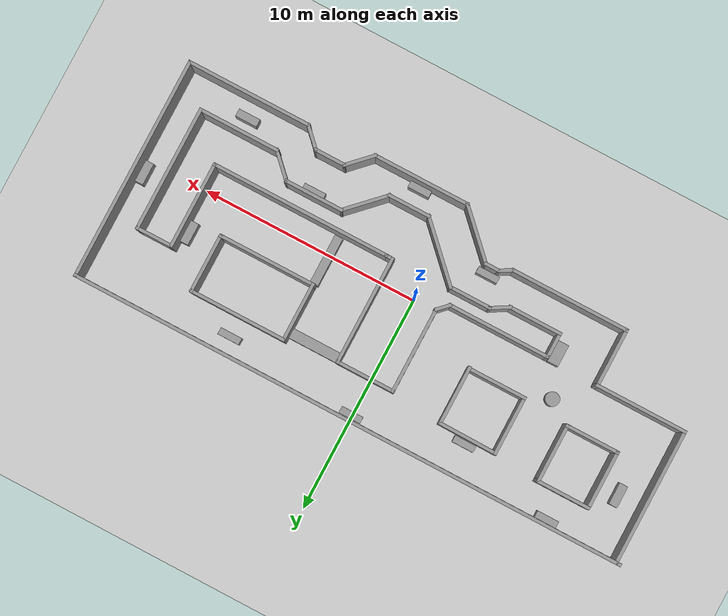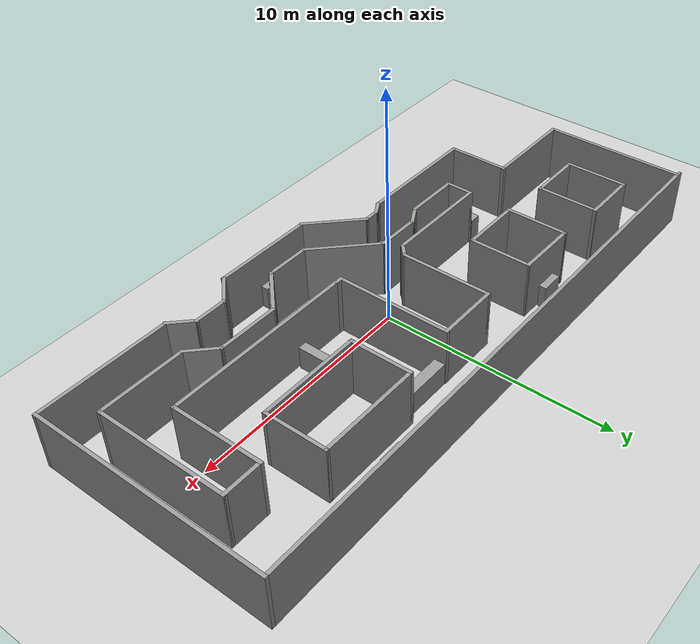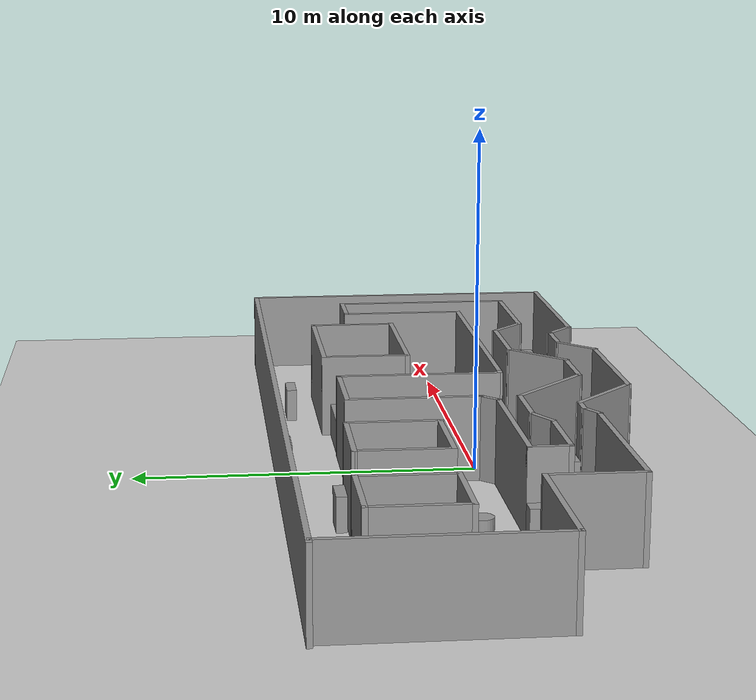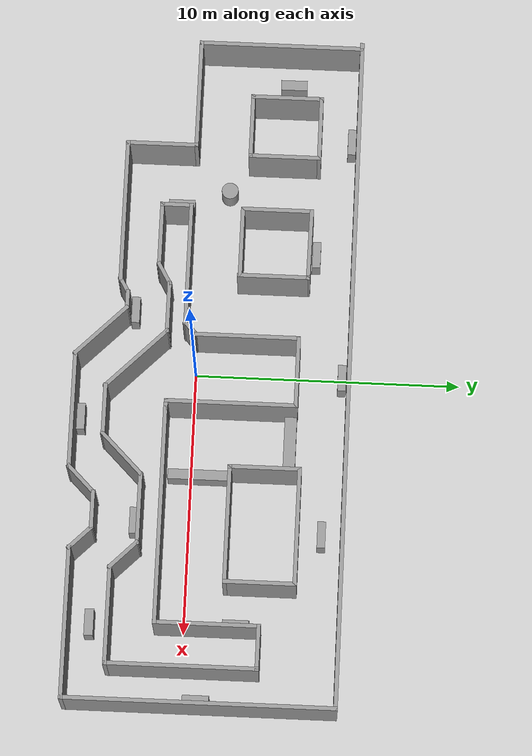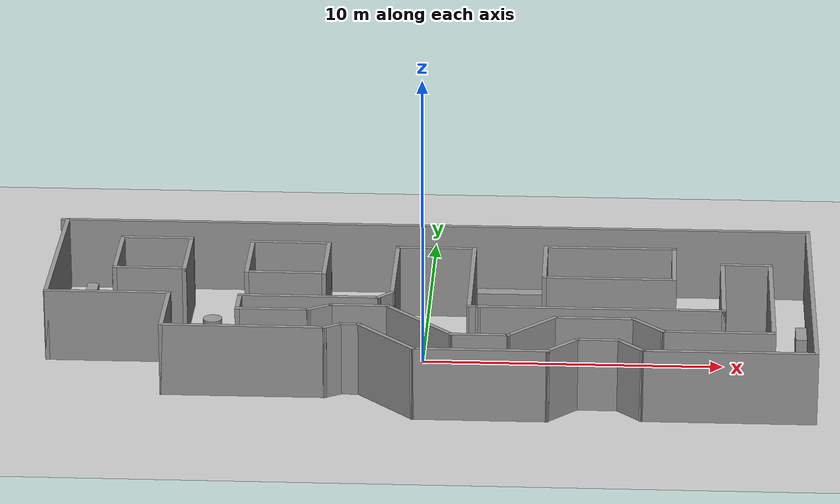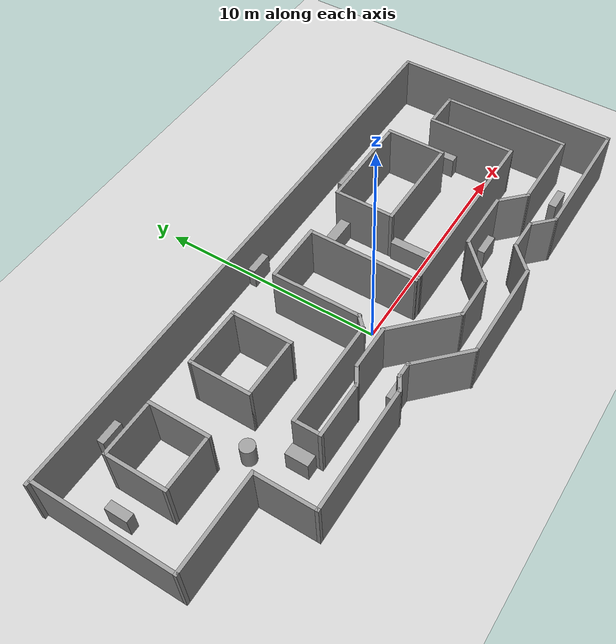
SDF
<sdf version="1.7">
 <world name="default">
  <light name="sun" type="directional">
   <pose>0 0 10 0 -0 0</pose>
   <diffuse>0.8 0.8 0.8 1</diffuse>
   <specular>0.2 0.2 0.2 1</specular>
   <attenuation>
    <range>1000</range>
    <constant>0.9</constant>
    <linear>0.01</linear>
    <quadratic>0.001</quadratic>
   </attenuation>
   <direction>-0.5 0.1 -0.9</direction>
   <spot><inner_angle>0</inner_angle><outer_angle>0</outer_angle><falloff>0</falloff></spot>
  </light>
  <model name="ground_plane">
   <static>1</static>
   <link name="link">
    <collision name="collision">
     <geometry><plane><normal>0 0 1</normal><size>100 100</size></plane></geometry>
     <surface>
      <contact><collide_bitmask>65535</collide_bitmask></contact>
      <friction><ode><mu>100</mu><mu2>50</mu2></ode></friction>
     </surface>
    </collision>
    <visual name="visual">
     <cast_shadows>0</cast_shadows>
     <geometry><plane><normal>0 0 1</normal><size>100 100</size></plane></geometry>
     <material>
      <script><uri>file://media/materials/scripts/gazebo.material</uri><name>Gazebo/Grey</name></script>
     </material>
    </visual>
   </link>
  </model>
  <gravity>0 0 -9.8</gravity>
  <magnetic_field>6e-06 2.3e-05 -4.2e-05</magnetic_field>
  <atmosphere type="adiabatic"/>
  <physics type="ode">
   <max_step_size>0.001</max_step_size>
   <real_time_factor>1</real_time_factor>
   <real_time_update_rate>1000</real_time_update_rate>
  </physics>
  <scene><ambient>0.4 0.4 0.4 1</ambient><background>0.7 0.7 0.7 1</background><shadows>1</shadows></scene>
  <audio><device>default</device></audio>
  <spherical_coordinates>
   <surface_model>EARTH_WGS84</surface_model>
   <latitude_deg>0</latitude_deg>
   <longitude_deg>0</longitude_deg>
   <elevation>0</elevation>
   <heading_deg>0</heading_deg>
  </spherical_coordinates>
  <model name="Wall_mid_term">
   <pose>0.110845 0.641806 0 0 -0 0</pose>
   <link name="Wall_29">
    <collision name="Wall_29_Collision">
     <geometry><box><size>4.5 0.15 2.5</size></box></geometry>
     <pose>0 0 1.25 0 -0 0</pose>
    </collision>
    <visual name="Wall_29_Visual">
     <pose>0 0 1.25 0 -0 0</pose>
     <geometry><box><size>4.5 0.15 2.5</size></box></geometry>
     <material>
      <script><uri>file://media/materials/scripts/gazebo.material</uri><name>Gazebo/Grey</name></script>
      <ambient>1 1 1 1</ambient>
     </material>
     <meta><layer>0</layer></meta>
    </visual>
    <pose>6.05948 3.45999 0 0 -0 0</pose>
   </link>
   <link name="Wall_30">
    <collision name="Wall_30_Collision">
     <geometry><box><size>2.75 0.15 2.5</size></box></geometry>
     <pose>0 0 1.25 0 -0 0</pose>
    </collision>
    <visual name="Wall_30_Visual">
     <pose>0 0 1.25 0 -0 0</pose>
     <geometry><box><size>2.75 0.15 2.5</size></box></geometry>
     <material>
      <script><uri>file://media/materials/scripts/gazebo.material</uri><name>Gazebo/Grey</name></script>
      <ambient>1 1 1 1</ambient>
     </material>
     <meta><layer>0</layer></meta>
    </visual>
    <pose>8.23448 2.15999 0 0 -0 -1.5708</pose>
   </link>
   <link name="Wall_31">
    <collision name="Wall_31_Collision">
     <geometry><box><size>4.5 0.15 2.5</size></box></geometry>
     <pose>0 0 1.25 0 -0 0</pose>
    </collision>
    <visual name="Wall_31_Visual">
     <pose>0 0 1.25 0 -0 0</pose>
     <geometry><box><size>4.5 0.15 2.5</size></box></geometry>
     <material>
      <script><uri>file://media/materials/scripts/gazebo.material</uri><name>Gazebo/Grey</name></script>
      <ambient>1 1 1 1</ambient>
     </material>
     <meta><layer>0</layer></meta>
    </visual>
    <pose>6.05948 0.859987 0 0 -0 3.14159</pose>
   </link>
   <link name="Wall_32">
    <collision name="Wall_32_Collision">
     <geometry><box><size>2.75 0.15 2.5</size></box></geometry>
     <pose>0 0 1.25 0 -0 0</pose>
    </collision>
    <visual name="Wall_32_Visual">
     <pose>0 0 1.25 0 -0 0</pose>
     <geometry><box><size>2.75 0.15 2.5</size></box></geometry>
     <material>
      <script><uri>file://media/materials/scripts/gazebo.material</uri><name>Gazebo/Grey</name></script>
      <ambient>1 1 1 1</ambient>
     </material>
     <meta><layer>0</layer></meta>
    </visual>
    <pose>3.88448 2.15999 0 0 -0 1.5708</pose>
   </link>
   <link name="Wall_35">
    <collision name="Wall_35_Collision">
     <geometry><box><size>8.25 0.15 2.5</size></box></geometry>
     <pose>0 0 1.25 0 -0 0</pose>
    </collision>
    <visual name="Wall_35_Visual">
     <pose>0 0 1.25 0 -0 0</pose>
     <geometry><box><size>8.25 0.15 2.5</size></box></geometry>
     <material>
      <script><uri>file://media/materials/scripts/gazebo.material</uri><name>Gazebo/Grey</name></script>
      <ambient>1 1 1 1</ambient>
     </material>
     <meta><layer>0</layer></meta>
    </visual>
    <pose>5.8081 -1.64781 0 0 -0 0</pose>
   </link>
   <link name="Wall_36">
    <collision name="Wall_36_Collision">
     <geometry><box><size>4 0.15 2.5</size></box></geometry>
     <pose>0 0 1.25 0 -0 0</pose>
    </collision>
    <visual name="Wall_36_Visual">
     <pose>0 0 1.25 0 -0 0</pose>
     <geometry><box><size>4 0.15 2.5</size></box></geometry>
     <material>
      <script><uri>file://media/materials/scripts/gazebo.material</uri><name>Gazebo/Grey</name></script>
      <ambient>1 1 1 1</ambient>
     </material>
     <meta><layer>0</layer></meta>
    </visual>
    <pose>9.8581 0.27719 0 0 -0 1.5708</pose>
   </link>
   <link name="Wall_37">
    <collision name="Wall_37_Collision">
     <geometry><box><size>1.75 0.15 2.5</size></box></geometry>
     <pose>0 0 1.25 0 -0 0</pose>
    </collision>
    <visual name="Wall_37_Visual">
     <pose>0 0 1.25 0 -0 0</pose>
     <geometry><box><size>1.75 0.15 2.5</size></box></geometry>
     <material>
      <script><uri>file://media/materials/scripts/gazebo.material</uri><name>Gazebo/Grey</name></script>
      <ambient>1 1 1 1</ambient>
     </material>
     <meta><layer>0</layer></meta>
    </visual>
    <pose>10.6581 2.20219 0 0 -0 0</pose>
   </link>
   <link name="Wall_38">
    <collision name="Wall_38_Collision">
     <geometry><box><size>5.75 0.15 2.5</size></box></geometry>
     <pose>0 0 1.25 0 -0 0</pose>
    </collision>
    <visual name="Wall_38_Visual">
     <pose>0 0 1.25 0 -0 0</pose>
     <geometry><box><size>5.75 0.15 2.5</size></box></geometry>
     <material>
      <script><uri>file://media/materials/scripts/gazebo.material</uri><name>Gazebo/Grey</name></script>
      <ambient>1 1 1 1</ambient>
     </material>
     <meta><layer>0</layer></meta>
    </visual>
    <pose>11.4581 -0.59781 0 0 -0 -1.5708</pose>
   </link>
   <link name="Wall_39">
    <collision name="Wall_39_Collision">
     <geometry><box><size>3.75 0.15 2.5</size></box></geometry>
     <pose>0 0 1.25 0 -0 0</pose>
    </collision>
    <visual name="Wall_39_Visual">
     <pose>0 0 1.25 0 -0 0</pose>
     <geometry><box><size>3.75 0.15 2.5</size></box></geometry>
     <material>
      <script><uri>file://media/materials/scripts/gazebo.material</uri><name>Gazebo/Grey</name></script>
      <ambient>1 1 1 1</ambient>
     </material>
     <meta><layer>0</layer></meta>
    </visual>
    <pose>9.6581 -3.39781 0 0 -0 3.14159</pose>
   </link>
   <link name="Wall_40">
    <collision name="Wall_40_Collision">
     <geometry><box><size>1.5 0.15 2.5</size></box></geometry>
     <pose>0 0 1.25 0 -0 0</pose>
    </collision>
    <visual name="Wall_40_Visual">
     <pose>0 0 1.25 0 -0 0</pose>
     <geometry><box><size>1.5 0.15 2.5</size></box></geometry>
     <material>
      <script><uri>file://media/materials/scripts/gazebo.material</uri><name>Gazebo/Grey</name></script>
      <ambient>1 1 1 1</ambient>
     </material>
     <meta><layer>0</layer></meta>
    </visual>
    <pose>7.3808 -2.92051 0 0 -0 2.35619</pose>
   </link>
   <link name="Wall_41">
    <collision name="Wall_41_Collision">
     <geometry><box><size>2.75 0.15 2.5</size></box></geometry>
     <pose>0 0 1.25 0 -0 0</pose>
    </collision>
    <visual name="Wall_41_Visual">
     <pose>0 0 1.25 0 -0 0</pose>
     <geometry><box><size>2.75 0.15 2.5</size></box></geometry>
     <material>
      <script><uri>file://media/materials/scripts/gazebo.material</uri><name>Gazebo/Grey</name></script>
      <ambient>1 1 1 1</ambient>
     </material>
     <meta><layer>0</layer></meta>
    </visual>
    <pose>5.6035 -2.44322 0 0 -0 3.14159</pose>
   </link>
   <link name="Wall_42">
    <collision name="Wall_42_Collision">
     <geometry><box><size>2.25 0.15 2.5</size></box></geometry>
     <pose>0 0 1.25 0 -0 0</pose>
    </collision>
    <visual name="Wall_42_Visual">
     <pose>0 0 1.25 0 -0 0</pose>
     <geometry><box><size>2.25 0.15 2.5</size></box></geometry>
     <material>
      <script><uri>file://media/materials/scripts/gazebo.material</uri><name>Gazebo/Grey</name></script>
      <ambient>1 1 1 1</ambient>
     </material>
     <meta><layer>0</layer></meta>
    </visual>
    <pose>3.56104 -3.18568 0 0 -0 -2.35619</pose>
   </link>
   <link name="Wall_44">
    <collision name="Wall_44_Collision">
     <geometry><box><size>2 0.15 2.5</size></box></geometry>
     <pose>0 0 1.25 0 -0 0</pose>
    </collision>
    <visual name="Wall_44_Visual">
     <pose>0 0 1.25 0 -0 0</pose>
     <geometry><box><size>2 0.15 2.5</size></box></geometry>
     <material>
      <script><uri>file://media/materials/scripts/gazebo.material</uri><name>Gazebo/Grey</name></script>
      <ambient>1 1 1 1</ambient>
     </material>
     <meta><layer>0</layer></meta>
    </visual>
    <pose>1.89358 -3.92814 0 0 -0 3.14159</pose>
   </link>
   <link name="Wall_45">
    <collision name="Wall_45_Collision">
     <geometry><box><size>3.25 0.15 2.5</size></box></geometry>
     <pose>0 0 1.25 0 -0 0</pose>
    </collision>
    <visual name="Wall_45_Visual">
     <pose>0 0 1.25 0 -0 0</pose>
     <geometry><box><size>3.25 0.15 2.5</size></box></geometry>
     <material>
      <script><uri>file://media/materials/scripts/gazebo.material</uri><name>Gazebo/Grey</name></script>
      <ambient>1 1 1 1</ambient>
     </material>
     <meta><layer>0</layer></meta>
    </visual>
    <pose>-0.127438 -2.83213 0 0 -0 2.35619</pose>
   </link>
   <link name="Wall_48">
    <collision name="Wall_48_Collision">
     <geometry><box><size>2 0.15 2.5</size></box></geometry>
     <pose>0 0 1.25 0 -0 0</pose>
    </collision>
    <visual name="Wall_48_Visual">
     <pose>0 0 1.25 0 -0 0</pose>
     <geometry><box><size>2 0.15 2.5</size></box></geometry>
     <material>
      <script><uri>file://media/materials/scripts/gazebo.material</uri><name>Gazebo/Grey</name></script>
      <ambient>1 1 1 1</ambient>
     </material>
     <meta><layer>0</layer></meta>
    </visual>
    <pose>-2.14845 -1.73611 0 0 -0 3.14159</pose>
   </link>
   <link name="Wall_49">
    <collision name="Wall_49_Collision">
     <geometry><box><size>1 0.15 2.5</size></box></geometry>
     <pose>0 0 1.25 0 -0 0</pose>
    </collision>
    <visual name="Wall_49_Visual">
     <pose>0 0 1.25 0 -0 0</pose>
     <geometry><box><size>1 0.15 2.5</size></box></geometry>
     <material>
      <script><uri>file://media/materials/scripts/gazebo.material</uri><name>Gazebo/Grey</name></script>
      <ambient>1 1 1 1</ambient>
     </material>
     <meta><layer>0</layer></meta>
    </visual>
    <pose>-3.44151 -1.94861 0 0 -0 -2.61799</pose>
   </link>
   <link name="Wall_50">
    <collision name="Wall_50_Collision">
     <geometry><box><size>2.5 0.15 2.5</size></box></geometry>
     <pose>0 0 1.25 0 -0 0</pose>
    </collision>
    <visual name="Wall_50_Visual">
     <pose>0 0 1.25 0 -0 0</pose>
     <geometry><box><size>2.5 0.15 2.5</size></box></geometry>
     <material>
      <script><uri>file://media/materials/scripts/gazebo.material</uri><name>Gazebo/Grey</name></script>
      <ambient>1 1 1 1</ambient>
     </material>
     <meta><layer>0</layer></meta>
    </visual>
    <pose>-4.98458 -2.16111 0 0 -0 3.14159</pose>
   </link>
   <link name="Wall_51">
    <collision name="Wall_51_Collision">
     <geometry><box><size>1.25 0.15 2.5</size></box></geometry>
     <pose>0 0 1.25 0 -0 0</pose>
    </collision>
    <visual name="Wall_51_Visual">
     <pose>0 0 1.25 0 -0 0</pose>
     <geometry><box><size>1.25 0.15 2.5</size></box></geometry>
     <material>
      <script><uri>file://media/materials/scripts/gazebo.material</uri><name>Gazebo/Grey</name></script>
      <ambient>1 1 1 1</ambient>
     </material>
     <meta><layer>0</layer></meta>
    </visual>
    <pose>-6.15958 -1.61111 0 0 -0 1.5708</pose>
   </link>
   <link name="Wall_52">
    <collision name="Wall_52_Collision">
     <geometry><box><size>4.75 0.15 2.5</size></box></geometry>
     <pose>0 0 1.25 0 -0 0</pose>
    </collision>
    <visual name="Wall_52_Visual">
     <pose>0 0 1.25 0 -0 0</pose>
     <geometry><box><size>4.75 0.15 2.5</size></box></geometry>
     <material>
      <script><uri>file://media/materials/scripts/gazebo.material</uri><name>Gazebo/Grey</name></script>
      <ambient>1 1 1 1</ambient>
     </material>
     <meta><layer>0</layer></meta>
    </visual>
    <pose>-3.85957 -1.06111 0 0 -0 0</pose>
   </link>
   <link name="Wall_53">
    <collision name="Wall_53_Collision">
     <geometry><box><size>0.75 0.15 2.5</size></box></geometry>
     <pose>0 0 1.25 0 -0 0</pose>
    </collision>
    <visual name="Wall_53_Visual">
     <pose>0 0 1.25 0 -0 0</pose>
     <geometry><box><size>0.75 0.15 2.5</size></box></geometry>
     <material>
      <script><uri>file://media/materials/scripts/gazebo.material</uri><name>Gazebo/Grey</name></script>
      <ambient>1 1 1 1</ambient>
     </material>
     <meta><layer>0</layer></meta>
    </visual>
    <pose>-1.34744 -0.848977 0 0 -0 0.785398</pose>
   </link>
   <link name="Wall_54">
    <collision name="Wall_54_Collision">
     <geometry><box><size>4 0.15 2.5</size></box></geometry>
     <pose>0 0 1.25 0 -0 0</pose>
    </collision>
    <visual name="Wall_54_Visual">
     <pose>0 0 1.25 0 -0 0</pose>
     <geometry><box><size>4 0.15 2.5</size></box></geometry>
     <material>
      <script><uri>file://media/materials/scripts/gazebo.material</uri><name>Gazebo/Grey</name></script>
      <ambient>1 1 1 1</ambient>
     </material>
     <meta><layer>0</layer></meta>
    </visual>
    <pose>-1.13531 1.28815 0 0 -0 1.5708</pose>
   </link>
   <link name="Wall_55">
    <collision name="Wall_55_Collision">
     <geometry><box><size>2.75 0.15 2.5</size></box></geometry>
     <pose>0 0 1.25 0 -0 0</pose>
    </collision>
    <visual name="Wall_55_Visual">
     <pose>0 0 1.25 0 -0 0</pose>
     <geometry><box><size>2.75 0.15 2.5</size></box></geometry>
     <material>
      <script><uri>file://media/materials/scripts/gazebo.material</uri><name>Gazebo/Grey</name></script>
      <ambient>1 1 1 1</ambient>
     </material>
     <meta><layer>0</layer></meta>
    </visual>
    <pose>0.164689 3.21315 0 0 -0 0</pose>
   </link>
   <link name="Wall_56">
    <collision name="Wall_56_Collision">
     <geometry><box><size>5 0.15 2.5</size></box></geometry>
     <pose>0 0 1.25 0 -0 0</pose>
    </collision>
    <visual name="Wall_56_Visual">
     <pose>0 0 1.25 0 -0 0</pose>
     <geometry><box><size>5 0.15 2.5</size></box></geometry>
     <material>
      <script><uri>file://media/materials/scripts/gazebo.material</uri><name>Gazebo/Grey</name></script>
      <ambient>1 1 1 1</ambient>
     </material>
     <meta><layer>0</layer></meta>
    </visual>
    <pose>1.46469 0.788155 0 0 -0 -1.5708</pose>
   </link>
   <link name="Wall_57">
    <collision name="Wall_57_Collision">
     <geometry><box><size>0.443612 0.15 2.5</size></box></geometry>
     <pose>0 0 1.25 0 -0 0</pose>
    </collision>
    <visual name="Wall_57_Visual">
     <pose>0 0 1.25 0 -0 0</pose>
     <geometry><box><size>0.443612 0.15 2.5</size></box></geometry>
     <material>
      <script><uri>file://media/materials/scripts/gazebo.material</uri><name>Gazebo/Grey</name></script>
      <ambient>1 1 1 1</ambient>
     </material>
     <meta><layer>0</layer></meta>
    </visual>
    <pose>1.61139 -1.64233 0 0 -0 -0.037354</pose>
   </link>
   <link name="Wall_59">
    <collision name="Wall_59_Collision">
     <geometry><box><size>25.75 0.15 2.5</size></box></geometry>
     <pose>0 0 1.25 0 -0 0</pose>
    </collision>
    <visual name="Wall_59_Visual">
     <pose>0 0 1.25 0 -0 0</pose>
     <geometry><box><size>25.75 0.15 2.5</size></box></geometry>
     <material>
      <script><uri>file://media/materials/scripts/gazebo.material</uri><name>Gazebo/Grey</name></script>
      <ambient>1 1 1 1</ambient>
     </material>
     <meta><layer>0</layer></meta>
    </visual>
    <pose>-0 5.15392 0 0 -0 0</pose>
   </link>
   <link name="Wall_60">
    <collision name="Wall_60_Collision">
     <geometry><box><size>10.25 0.15 2.5</size></box></geometry>
     <pose>0 0 1.25 0 -0 0</pose>
    </collision>
    <visual name="Wall_60_Visual">
     <pose>0 0 1.25 0 -0 0</pose>
     <geometry><box><size>10.25 0.15 2.5</size></box></geometry>
     <material>
      <script><uri>file://media/materials/scripts/gazebo.material</uri><name>Gazebo/Grey</name></script>
      <ambient>1 1 1 1</ambient>
     </material>
     <meta><layer>0</layer></meta>
    </visual>
    <pose>12.8 0.103921 0 0 -0 -1.5708</pose>
   </link>
   <link name="Wall_61">
    <collision name="Wall_61_Collision">
     <geometry><box><size>5.75 0.15 2.5</size></box></geometry>
     <pose>0 0 1.25 0 -0 0</pose>
    </collision>
    <visual name="Wall_61_Visual">
     <pose>0 0 1.25 0 -0 0</pose>
     <geometry><box><size>5.75 0.15 2.5</size></box></geometry>
     <material>
      <script><uri>file://media/materials/scripts/gazebo.material</uri><name>Gazebo/Grey</name></script>
      <ambient>1 1 1 1</ambient>
     </material>
     <meta><layer>0</layer></meta>
    </visual>
    <pose>10 -4.94608 0 0 -0 3.14159</pose>
   </link>
   <link name="Wall_63">
    <collision name="Wall_63_Collision">
     <geometry><box><size>1.25 0.15 2.5</size></box></geometry>
     <pose>0 0 1.25 0 -0 0</pose>
    </collision>
    <visual name="Wall_63_Visual">
     <pose>0 0 1.25 0 -0 0</pose>
     <geometry><box><size>1.25 0.15 2.5</size></box></geometry>
     <material>
      <script><uri>file://media/materials/scripts/gazebo.material</uri><name>Gazebo/Grey</name></script>
      <ambient>1 1 1 1</ambient>
     </material>
     <meta><layer>0</layer></meta>
    </visual>
    <pose>6.81109 -4.55717 0 0 -0 2.35619</pose>
   </link>
   <link name="Wall_64">
    <collision name="Wall_64_Collision">
     <geometry><box><size>1.5 0.15 2.5</size></box></geometry>
     <pose>0 0 1.25 0 -0 0</pose>
    </collision>
    <visual name="Wall_64_Visual">
     <pose>0 0 1.25 0 -0 0</pose>
     <geometry><box><size>1.5 0.15 2.5</size></box></geometry>
     <material>
      <script><uri>file://media/materials/scripts/gazebo.material</uri><name>Gazebo/Grey</name></script>
      <ambient>1 1 1 1</ambient>
     </material>
     <meta><layer>0</layer></meta>
    </visual>
    <pose>5.74718 -4.16826 0 0 -0 3.14159</pose>
   </link>
   <link name="Wall_65">
    <collision name="Wall_65_Collision">
     <geometry><box><size>1.5 0.15 2.5</size></box></geometry>
     <pose>0 0 1.25 0 -0 0</pose>
    </collision>
    <visual name="Wall_65_Visual">
     <pose>0 0 1.25 0 -0 0</pose>
     <geometry><box><size>1.5 0.15 2.5</size></box></geometry>
     <material>
      <script><uri>file://media/materials/scripts/gazebo.material</uri><name>Gazebo/Grey</name></script>
      <ambient>1 1 1 1</ambient>
     </material>
     <meta><layer>0</layer></meta>
    </visual>
    <pose>4.59488 -4.64556 0 0 -0 -2.35619</pose>
   </link>
   <link name="Wall_66">
    <collision name="Wall_66_Collision">
     <geometry><box><size>4.5 0.15 2.5</size></box></geometry>
     <pose>0 0 1.25 0 -0 0</pose>
    </collision>
    <visual name="Wall_66_Visual">
     <pose>0 0 1.25 0 -0 0</pose>
     <geometry><box><size>4.5 0.15 2.5</size></box></geometry>
     <material>
      <script><uri>file://media/materials/scripts/gazebo.material</uri><name>Gazebo/Grey</name></script>
      <ambient>1 1 1 1</ambient>
     </material>
     <meta><layer>0</layer></meta>
    </visual>
    <pose>1.94259 -5.12286 0 0 -0 3.14159</pose>
   </link>
   <link name="Wall_67">
    <collision name="Wall_67_Collision">
     <geometry><box><size>2.75 0.15 2.5</size></box></geometry>
     <pose>0 0 1.25 0 -0 0</pose>
    </collision>
    <visual name="Wall_67_Visual">
     <pose>0 0 1.25 0 -0 0</pose>
     <geometry><box><size>2.75 0.15 2.5</size></box></geometry>
     <material>
      <script><uri>file://media/materials/scripts/gazebo.material</uri><name>Gazebo/Grey</name></script>
      <ambient>1 1 1 1</ambient>
     </material>
     <meta><layer>0</layer></meta>
    </visual>
    <pose>-1.15165 -4.20362 0 0 -0 2.35619</pose>
   </link>
   <link name="Wall_68">
    <collision name="Wall_68_Collision">
     <geometry><box><size>0.75 0.15 2.5</size></box></geometry>
     <pose>0 0 1.25 0 -0 0</pose>
    </collision>
    <visual name="Wall_68_Visual">
     <pose>0 0 1.25 0 -0 0</pose>
     <geometry><box><size>0.75 0.15 2.5</size></box></geometry>
     <material>
      <script><uri>file://media/materials/scripts/gazebo.material</uri><name>Gazebo/Grey</name></script>
      <ambient>1 1 1 1</ambient>
     </material>
     <meta><layer>0</layer></meta>
    </visual>
    <pose>-2.37089 -3.28438 0 0 -0 3.14159</pose>
   </link>
   <link name="Wall_70">
    <collision name="Wall_70_Collision">
     <geometry><box><size>0.75 0.15 2.5</size></box></geometry>
     <pose>0 0 1.25 0 -0 0</pose>
    </collision>
    <visual name="Wall_70_Visual">
     <pose>0 0 1.25 0 -0 0</pose>
     <geometry><box><size>0.75 0.15 2.5</size></box></geometry>
     <material>
      <script><uri>file://media/materials/scripts/gazebo.material</uri><name>Gazebo/Grey</name></script>
      <ambient>1 1 1 1</ambient>
     </material>
     <meta><layer>0</layer></meta>
    </visual>
    <pose>-2.9307 -3.43438 0 0 -0 -2.61799</pose>
   </link>
   <link name="Wall_71">
    <collision name="Wall_71_Collision">
     <geometry><box><size>5.5 0.15 2.5</size></box></geometry>
     <pose>0 0 1.25 0 -0 0</pose>
    </collision>
    <visual name="Wall_71_Visual">
     <pose>0 0 1.25 0 -0 0</pose>
     <geometry><box><size>5.5 0.15 2.5</size></box></geometry>
     <material>
      <script><uri>file://media/materials/scripts/gazebo.material</uri><name>Gazebo/Grey</name></script>
      <ambient>1 1 1 1</ambient>
     </material>
     <meta><layer>0</layer></meta>
    </visual>
    <pose>-5.8655 -3.58438 0 0 -0 3.14159</pose>
   </link>
   <link name="Wall_72">
    <collision name="Wall_72_Collision">
     <geometry><box><size>2.75 0.15 2.5</size></box></geometry>
     <pose>0 0 1.25 0 -0 0</pose>
    </collision>
    <visual name="Wall_72_Visual">
     <pose>0 0 1.25 0 -0 0</pose>
     <geometry><box><size>2.75 0.15 2.5</size></box></geometry>
     <material>
      <script><uri>file://media/materials/scripts/gazebo.material</uri><name>Gazebo/Grey</name></script>
      <ambient>1 1 1 1</ambient>
     </material>
     <meta><layer>0</layer></meta>
    </visual>
    <pose>-8.5405 -2.28438 0 0 -0 1.5708</pose>
   </link>
   <link name="Wall_73">
    <collision name="Wall_73_Collision">
     <geometry><box><size>4.25 0.15 2.5</size></box></geometry>
     <pose>0 0 1.25 0 -0 0</pose>
    </collision>
    <visual name="Wall_73_Visual">
     <pose>0 0 1.25 0 -0 0</pose>
     <geometry><box><size>4.25 0.15 2.5</size></box></geometry>
     <material>
      <script><uri>file://media/materials/scripts/gazebo.material</uri><name>Gazebo/Grey</name></script>
      <ambient>1 1 1 1</ambient>
     </material>
     <meta><layer>0</layer></meta>
    </visual>
    <pose>-10.5905 -0.984378 0 0 -0 3.14159</pose>
   </link>
   <link name="Wall_74">
    <collision name="Wall_74_Collision">
     <geometry><box><size>6.25 0.15 2.5</size></box></geometry>
     <pose>0 0 1.25 0 -0 0</pose>
    </collision>
    <visual name="Wall_74_Visual">
     <pose>0 0 1.25 0 -0 0</pose>
     <geometry><box><size>6.25 0.15 2.5</size></box></geometry>
     <material>
      <script><uri>file://media/materials/scripts/gazebo.material</uri><name>Gazebo/Grey</name></script>
      <ambient>1 1 1 1</ambient>
     </material>
     <meta><layer>0</layer></meta>
    </visual>
    <pose>-12.6405 2.06562 0 0 -0 1.5708</pose>
   </link>
   <link name="Wall_76">
    <collision name="Wall_76_Collision">
     <geometry><box><size>2.75 0.15 2.5</size></box></geometry>
     <pose>0 0 1.25 0 -0 0</pose>
    </collision>
    <visual name="Wall_76_Visual">
     <pose>0 0 1.25 0 -0 0</pose>
     <geometry><box><size>2.75 0.15 2.5</size></box></geometry>
     <material>
      <script><uri>file://media/materials/scripts/gazebo.material</uri><name>Gazebo/Grey</name></script>
      <ambient>1 1 1 1</ambient>
     </material>
     <meta><layer>0</layer></meta>
    </visual>
    <pose>-10.5669 2.38559 0 0 -0 -1.5708</pose>
   </link>
   <link name="Wall_77">
    <collision name="Wall_77_Collision">
     <geometry><box><size>2.5 0.15 2.5</size></box></geometry>
     <pose>0 0 1.25 0 -0 0</pose>
    </collision>
    <visual name="Wall_77_Visual">
     <pose>0 0 1.25 0 -0 0</pose>
     <geometry><box><size>2.5 0.15 2.5</size></box></geometry>
     <material>
      <script><uri>file://media/materials/scripts/gazebo.material</uri><name>Gazebo/Grey</name></script>
      <ambient>1 1 1 1</ambient>
     </material>
     <meta><layer>0</layer></meta>
    </visual>
    <pose>-9.39191 1.08559 0 0 -0 0</pose>
   </link>
   <link name="Wall_78">
    <collision name="Wall_78_Collision">
     <geometry><box><size>2.75 0.15 2.5</size></box></geometry>
     <pose>0 0 1.25 0 -0 0</pose>
    </collision>
    <visual name="Wall_78_Visual">
     <pose>0 0 1.25 0 -0 0</pose>
     <geometry><box><size>2.75 0.15 2.5</size></box></geometry>
     <material>
      <script><uri>file://media/materials/scripts/gazebo.material</uri><name>Gazebo/Grey</name></script>
      <ambient>1 1 1 1</ambient>
     </material>
     <meta><layer>0</layer></meta>
    </visual>
    <pose>-8.21691 2.38559 0 0 -0 1.5708</pose>
   </link>
   <link name="Wall_80">
    <collision name="Wall_80_Collision">
     <geometry><box><size>2.5 0.15 2.5</size></box></geometry>
     <pose>0 0 1.25 0 -0 0</pose>
    </collision>
    <visual name="Wall_80_Visual">
     <pose>0 0 1.25 0 -0 0</pose>
     <geometry><box><size>2.5 0.15 2.5</size></box></geometry>
     <material>
      <script><uri>file://media/materials/scripts/gazebo.material</uri><name>Gazebo/Grey</name></script>
      <ambient>1 1 1 1</ambient>
     </material>
     <meta><layer>0</layer></meta>
    </visual>
    <pose>-9.39191 3.68559 0 0 -0 0</pose>
   </link>
   <link name="Wall_82">
    <collision name="Wall_82_Collision">
     <geometry><box><size>2.75 0.15 2.5</size></box></geometry>
     <pose>0 0 1.25 0 -0 0</pose>
    </collision>
    <visual name="Wall_82_Visual">
     <pose>0 0 1.25 0 -0 0</pose>
     <geometry><box><size>2.75 0.15 2.5</size></box></geometry>
     <material>
      <script><uri>file://media/materials/scripts/gazebo.material</uri><name>Gazebo/Grey</name></script>
      <ambient>1 1 1 1</ambient>
     </material>
     <meta><layer>0</layer></meta>
    </visual>
    <pose>-6.10074 2.19677 0 0 -0 -1.5708</pose>
   </link>
   <link name="Wall_83">
    <collision name="Wall_83_Collision">
     <geometry><box><size>2.75 0.15 2.5</size></box></geometry>
     <pose>0 0 1.25 0 -0 0</pose>
    </collision>
    <visual name="Wall_83_Visual">
     <pose>0 0 1.25 0 -0 0</pose>
     <geometry><box><size>2.75 0.15 2.5</size></box></geometry>
     <material>
      <script><uri>file://media/materials/scripts/gazebo.material</uri><name>Gazebo/Grey</name></script>
      <ambient>1 1 1 1</ambient>
     </material>
     <meta><layer>0</layer></meta>
    </visual>
    <pose>-4.80074 0.896771 0 0 -0 0</pose>
   </link>
   <link name="Wall_84">
    <collision name="Wall_84_Collision">
     <geometry><box><size>2.75 0.15 2.5</size></box></geometry>
     <pose>0 0 1.25 0 -0 0</pose>
    </collision>
    <visual name="Wall_84_Visual">
     <pose>0 0 1.25 0 -0 0</pose>
     <geometry><box><size>2.75 0.15 2.5</size></box></geometry>
     <material>
      <script><uri>file://media/materials/scripts/gazebo.material</uri><name>Gazebo/Grey</name></script>
      <ambient>1 1 1 1</ambient>
     </material>
     <meta><layer>0</layer></meta>
    </visual>
    <pose>-3.50074 2.16618 0 0 -0 1.5708</pose>
   </link>
   <link name="Wall_86">
    <collision name="Wall_86_Collision">
     <geometry><box><size>2.75 0.15 2.5</size></box></geometry>
     <pose>0 0 1.25 0 -0 0</pose>
    </collision>
    <visual name="Wall_86_Visual">
     <pose>0 0 1.25 0 -0 0</pose>
     <geometry><box><size>2.75 0.15 2.5</size></box></geometry>
     <material>
      <script><uri>file://media/materials/scripts/gazebo.material</uri><name>Gazebo/Grey</name></script>
      <ambient>1 1 1 1</ambient>
     </material>
     <meta><layer>0</layer></meta>
    </visual>
    <pose>-4.80074 3.48148 0 0 -0 -0.011765</pose>
   </link>
   <static>1</static>
  </model>
  <model name="unit_cylinder">
   <pose>-7.11631 0.974267 0.5 0 -0 0</pose>
   <link name="link">
    <inertial>
     <mass>1</mass>
     <inertia><ixx>0.145833</ixx><ixy>0</ixy><ixz>0</ixz><iyy>0.145833</iyy><iyz>0</iyz><izz>0.125</izz></inertia>
    </inertial>
    <collision name="collision">
     <geometry><cylinder><radius>0.317008</radius><length>1</length></cylinder></geometry>
    </collision>
    <visual name="visual">
     <geometry><cylinder><radius>0.317008</radius><length>1</length></cylinder></geometry>
     <material>
      <script><name>Gazebo/Grey</name><uri>file://media/materials/scripts/gazebo.material</uri></script>
     </material>
    </visual>
   </link>
  </model>
  <model name="unit_box">
   <pose>-6.42685 -0.838387 0.5 0 -0 0</pose>
   <link name="link">
    <inertial>
     <mass>1</mass>
     <inertia>
      <ixx>0.166667</ixx>
      <ixy>0</ixy>
      <ixz>0</ixz>
      <iyy>0.166667</iyy>
      <iyz>0</iyz>
      <izz>0.166667</izz>
     </inertia>
    </inertial>
    <collision name="collision"><geometry><box><size>0.512629 1 1</size></box></geometry></collision>
    <visual name="visual">
     <geometry><box><size>0.512629 1 1</size></box></geometry>
     <material>
      <script><name>Gazebo/Grey</name><uri>file://media/materials/scripts/gazebo.material</uri></script>
     </material>
    </visual>
   </link>
  </model>
  <model name="unit_box_clone">
   <pose>-11.4503 3.25183 0.5 0 -0 0</pose>
   <link name="link">
    <inertial>
     <mass>1</mass>
     <inertia>
      <ixx>0.166667</ixx>
      <ixy>0</ixy>
      <ixz>0</ixz>
      <iyy>0.166667</iyy>
      <iyz>0</iyz>
      <izz>0.166667</izz>
     </inertia>
    </inertial>
    <collision name="collision"><geometry><box><size>0.385472 1 1</size></box></geometry></collision>
    <visual name="visual">
     <geometry><box><size>0.385472 1 1</size></box></geometry>
     <material>
      <script><name>Gazebo/Grey</name><uri>file://media/materials/scripts/gazebo.material</uri></script>
     </material>
    </visual>
   </link>
  </model>
  <model name="unit_box_0">
   <pose>9.70086 1.95416 0.5 0 -0 0</pose>
   <link name="link">
    <inertial>
     <mass>1</mass>
     <inertia>
      <ixx>0.166667</ixx>
      <ixy>0</ixy>
      <ixz>0</ixz>
      <iyy>0.166667</iyy>
      <iyz>0</iyz>
      <izz>0.166667</izz>
     </inertia>
    </inertial>
    <collision name="collision"><geometry><box><size>0.370066 1 1</size></box></geometry></collision>
    <visual name="visual">
     <geometry><box><size>0.370066 1 1</size></box></geometry>
     <material>
      <script><name>Gazebo/Grey</name><uri>file://media/materials/scripts/gazebo.material</uri></script>
     </material>
    </visual>
   </link>
  </model>
  <model name="unit_box_0_clone">
   <pose>12.5911 0.59856 0.5 0 -0 0</pose>
   <link name="link">
    <inertial>
     <mass>1</mass>
     <inertia>
      <ixx>0.166667</ixx>
      <ixy>0</ixy>
      <ixz>0</ixz>
      <iyy>0.166667</iyy>
      <iyz>0</iyz>
      <izz>0.166667</izz>
     </inertia>
    </inertial>
    <collision name="collision"><geometry><box><size>0.370066 1 1</size></box></geometry></collision>
    <visual name="visual">
     <geometry><box><size>0.370066 1 1</size></box></geometry>
     <material>
      <script><name>Gazebo/Grey</name><uri>file://media/materials/scripts/gazebo.material</uri></script>
     </material>
    </visual>
   </link>
  </model>
  <model name="unit_box_0_clone_0">
   <pose>9.82399 -3.50053 0.5 0 0 -1.56814</pose>
   <link name="link">
    <inertial>
     <mass>1</mass>
     <inertia>
      <ixx>0.166667</ixx>
      <ixy>0</ixy>
      <ixz>0</ixz>
      <iyy>0.166667</iyy>
      <iyz>0</iyz>
      <izz>0.166667</izz>
     </inertia>
    </inertial>
    <collision name="collision"><geometry><box><size>0.34702 1 1</size></box></geometry></collision>
    <visual name="visual">
     <geometry><box><size>0.34702 1 1</size></box></geometry>
     <material>
      <script><name>Gazebo/Grey</name><uri>file://media/materials/scripts/gazebo.material</uri></script>
     </material>
    </visual>
   </link>
  </model>
  <model name="unit_box_1_clone">
   <pose>5.88329 -2.04283 0.5 0 -0 0</pose>
   <link name="link">
    <inertial>
     <mass>1</mass>
     <inertia>
      <ixx>0.166667</ixx>
      <ixy>0</ixy>
      <ixz>0</ixz>
      <iyy>0.166667</iyy>
      <iyz>0</iyz>
      <izz>0.166667</izz>
     </inertia>
    </inertial>
    <collision name="collision"><geometry><box><size>1 0.311116 1</size></box></geometry></collision>
    <visual name="visual">
     <geometry><box><size>1 0.311116 1</size></box></geometry>
     <material>
      <script><name>Gazebo/Grey</name><uri>file://media/materials/scripts/gazebo.material</uri></script>
     </material>
    </visual>
   </link>
  </model>
  <model name="unit_box_1_clone_0">
   <pose>1.97209 -4.23687 0.5 0 -0 0</pose>
   <link name="link">
    <inertial>
     <mass>1</mass>
     <inertia>
      <ixx>0.166667</ixx>
      <ixy>0</ixy>
      <ixz>0</ixz>
      <iyy>0.166667</iyy>
      <iyz>0</iyz>
      <izz>0.166667</izz>
     </inertia>
    </inertial>
    <collision name="collision"><geometry><box><size>1 0.311116 1</size></box></geometry></collision>
    <visual name="visual">
     <geometry><box><size>1 0.311116 1</size></box></geometry>
     <material>
      <script><name>Gazebo/Grey</name><uri>file://media/materials/scripts/gazebo.material</uri></script>
     </material>
    </visual>
   </link>
  </model>
  <model name="unit_box_1_clone_1">
   <pose>-2.26221 -2.37977 0.5 0 -0 0</pose>
   <link name="link">
    <inertial>
     <mass>1</mass>
     <inertia>
      <ixx>0.166667</ixx>
      <ixy>0</ixy>
      <ixz>0</ixz>
      <iyy>0.166667</iyy>
      <iyz>0</iyz>
      <izz>0.166667</izz>
     </inertia>
    </inertial>
    <collision name="collision"><geometry><box><size>1 0.311116 1</size></box></geometry></collision>
    <visual name="visual">
     <geometry><box><size>1 0.311116 1</size></box></geometry>
     <material>
      <script><name>Gazebo/Grey</name><uri>file://media/materials/scripts/gazebo.material</uri></script>
     </material>
    </visual>
   </link>
  </model>
  <model name="unit_box_2">
   <pose>4.04251 0.27936 0.5 0 -0 0</pose>
   <link name="link">
    <inertial>
     <mass>1</mass>
     <inertia>
      <ixx>0.166667</ixx>
      <ixy>0</ixy>
      <ixz>0</ixz>
      <iyy>0.166667</iyy>
      <iyz>0</iyz>
      <izz>0.166667</izz>
     </inertia>
    </inertial>
    <collision name="collision"><geometry><box><size>0.382283 2.27137 1</size></box></geometry></collision>
    <visual name="visual">
     <geometry><box><size>0.382283 2.27137 1</size></box></geometry>
     <material>
      <script><name>Gazebo/Grey</name><uri>file://media/materials/scripts/gazebo.material</uri></script>
     </material>
    </visual>
   </link>
  </model>
  <model name="unit_box_3">
   <pose>2.79723 3.68108 0.5 0 -0 0</pose>
   <link name="link">
    <inertial>
     <mass>1</mass>
     <inertia>
      <ixx>0.166667</ixx>
      <ixy>0</ixy>
      <ixz>0</ixz>
      <iyy>0.166667</iyy>
      <iyz>0</iyz>
      <izz>0.166667</izz>
     </inertia>
    </inertial>
    <collision name="collision"><geometry><box><size>2.22288 0.457181 1</size></box></geometry></collision>
    <visual name="visual">
     <geometry><box><size>2.22288 0.457181 1</size></box></geometry>
     <material>
      <script><name>Gazebo/Grey</name><uri>file://media/materials/scripts/gazebo.material</uri></script>
     </material>
    </visual>
   </link>
  </model>
  <model name="unit_box_1_clone_clone">
   <pose>-9.25792 5.56015 0.5 0 -0 0</pose>
   <link name="link">
    <inertial>
     <mass>1</mass>
     <inertia>
      <ixx>0.166667</ixx>
      <ixy>0</ixy>
      <ixz>0</ixz>
      <iyy>0.166667</iyy>
      <iyz>0</iyz>
      <izz>0.166667</izz>
     </inertia>
    </inertial>
    <collision name="collision"><geometry><box><size>1 0.311116 1</size></box></geometry></collision>
    <visual name="visual">
     <geometry><box><size>1 0.311116 1</size></box></geometry>
     <material>
      <script><name>Gazebo/Grey</name><uri>file://media/materials/scripts/gazebo.material</uri></script>
     </material>
    </visual>
   </link>
  </model>
  <model name="unit_box_1_clone_clone_0">
   <pose>-4.71191 4.38429 0.5 0 -0 0</pose>
   <link name="link">
    <inertial>
     <mass>1</mass>
     <inertia>
      <ixx>0.166667</ixx>
      <ixy>0</ixy>
      <ixz>0</ixz>
      <iyy>0.166667</iyy>
      <iyz>0</iyz>
      <izz>0.166667</izz>
     </inertia>
    </inertial>
    <collision name="collision"><geometry><box><size>1 0.311116 1</size></box></geometry></collision>
    <visual name="visual">
     <geometry><box><size>1 0.311116 1</size></box></geometry>
     <material>
      <script><name>Gazebo/Grey</name><uri>file://media/materials/scripts/gazebo.material</uri></script>
     </material>
    </visual>
   </link>
  </model>
  <model name="unit_box_1_clone_clone_1">
   <pose>0.072261 5.54042 0.5 0 -0 0</pose>
   <link name="link">
    <inertial>
     <mass>1</mass>
     <inertia>
      <ixx>0.166667</ixx>
      <ixy>0</ixy>
      <ixz>0</ixz>
      <iyy>0.166667</iyy>
      <iyz>0</iyz>
      <izz>0.166667</izz>
     </inertia>
    </inertial>
    <collision name="collision"><geometry><box><size>1 0.311116 1</size></box></geometry></collision>
    <visual name="visual">
     <geometry><box><size>1 0.311116 1</size></box></geometry>
     <material>
      <script><name>Gazebo/Grey</name><uri>file://media/materials/scripts/gazebo.material</uri></script>
     </material>
    </visual>
   </link>
  </model>
  <model name="unit_box_1_clone_clone_2">
   <pose>6.14106 5.0085 0.5 0 -0 0</pose>
   <link name="link">
    <inertial>
     <mass>1</mass>
     <inertia>
      <ixx>0.166667</ixx>
      <ixy>0</ixy>
      <ixz>0</ixz>
      <iyy>0.166667</iyy>
      <iyz>0</iyz>
      <izz>0.166667</izz>
     </inertia>
    </inertial>
    <collision name="collision"><geometry><box><size>1 0.311116 1</size></box></geometry></collision>
    <visual name="visual">
     <geometry><box><size>1 0.311116 1</size></box></geometry>
     <material>
      <script><name>Gazebo/Grey</name><uri>file://media/materials/scripts/gazebo.material</uri></script>
     </material>
    </visual>
   </link>
  </model>
 </world>
</sdf>
